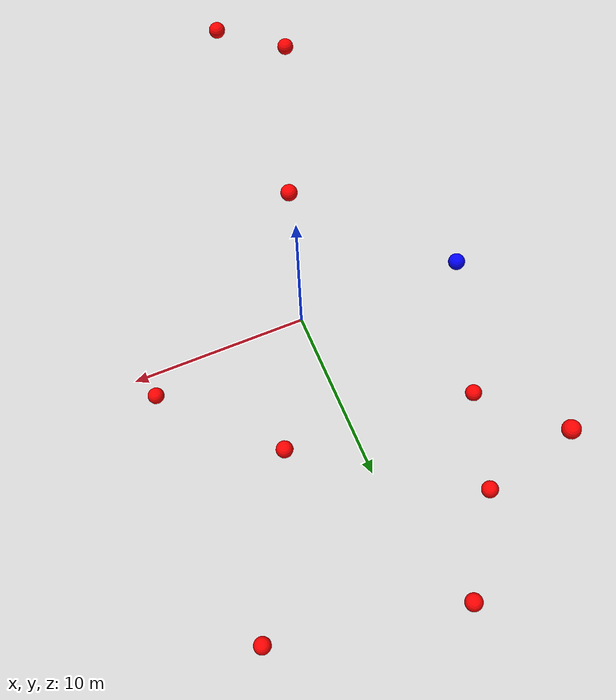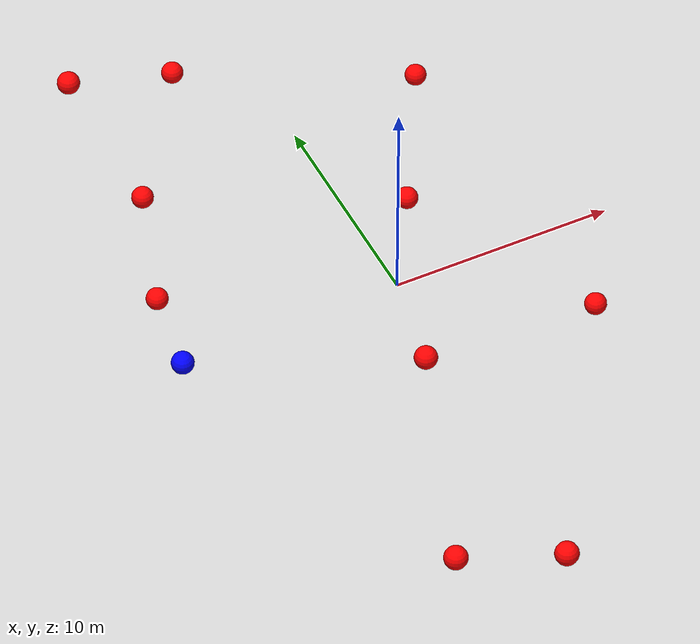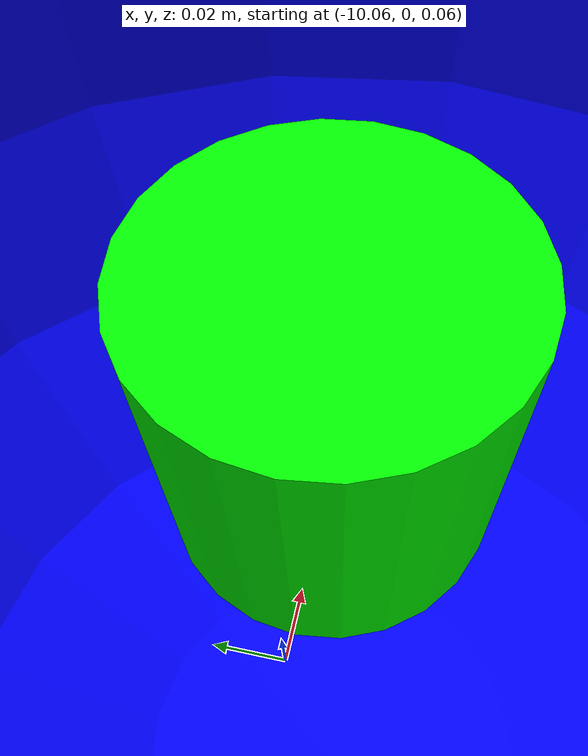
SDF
<?xml version="1.0" ?>
<sdf version="1.8">
    <world name="3d_world">
        <physics name="1ms" type="ode">
            <max_step_size>0.001</max_step_size>
            <real_time_factor>1.0</real_time_factor>
            <real_time_update_rate>1000.0</real_time_update_rate>
        </physics>
        <gravity>0 0 0</gravity>

        <plugin
            filename="gz-sim-physics-system"
            name="gz::sim::v8::systems::Physics">
        </plugin>
        <plugin
            filename="libignition-gazebo-user-commands-system.so"
            name="ignition::gazebo::systems::UserCommands">
        </plugin>
        <plugin
            filename="gz-sim-scene-broadcaster-system"
            name="gz::sim::systems::SceneBroadcaster">
        </plugin>
        <plugin
            filename="gz-sim-sensors-system"
            name="gz::sim::systems::Sensors">
            <render_engine>ogre2</render_engine>
        </plugin>

        <light type="directional" name="sun">
            <cast_shadows>true</cast_shadows>
            <pose>0 0 10 0 0 0</pose>
            <diffuse>0.8 0.8 0.8 1</diffuse>
            <specular>0.2 0.2 0.2 1</specular>
            <attenuation>
                <range>1000</range>
                <constant>0.9</constant>
                <linear>0.01</linear>
                <quadratic>0.001</quadratic>
            </attenuation>
            <direction>-0.5 0.1 -0.9</direction>
        </light>

        <!-- AGENTE -->
        <model name='agente' canonical_link='chassis'>
            <pose relative_to='world'>-10.0 0 0.0 0 0 0</pose>
            <link name='chassis'>
                <pose relative_to='__model__'>0.0 0 0.0 0 0 0</pose>
                <inertial>
                    <mass>1.14395</mass>
                    <inertia>
                        <ixx>0.095329</ixx>
                        <ixy>0</ixy>
                        <ixz>0</ixz>
                        <iyy>0.381317</iyy>
                        <iyz>0</iyz>
                        <izz>0.476646</izz>
                    </inertia>
                </inertial>
                <visual name='visual'>
                    <geometry>
                        <sphere>
                            <radius>0.5</radius>
                        </sphere>
                    </geometry>
                    <material>
                        <ambient>0.0 0.0 1.0 1</ambient>
                        <diffuse>0.0 0.0 1.0 1</diffuse>
                        <specular>0.0 0.0 1.0 1</specular>
                    </material>
                </visual>
                <collision name='collision'>
                    <geometry>
                        <sphere>
                            <radius>0.5</radius>
                        </sphere>
                    </geometry>
                </collision>
                <enable_gravity>false</enable_gravity>
            </link>

            <link name='lidar_link'>
                <pose relative_to='chassis'>0.0 0 0.1 0 0 0</pose>
                <inertial>
                    <mass>0.1</mass>
                    <inertia>
                        <ixx>0.000166667</ixx>
                        <iyy>0.000166667</iyy>
                        <izz>0.000166667</izz>
                    </inertia>
                </inertial>
                <collision name='collision'>
                    <geometry>
                        <cylinder>
                            <radius>0.05</radius>
                            <length>0.1</length>
                        </cylinder>
                    </geometry>
                </collision>
                <visual name='visual'>
                    <geometry>
                        <cylinder>
                            <radius>0.05</radius>
                            <length>0.1</length>
                        </cylinder>
                    </geometry>
                    <material>
                        <ambient>0.0 1.0 0.0 1</ambient>
                        <diffuse>0.0 1.0 0.0 1</diffuse>
                        <specular>0.0 1.0 0.0 1</specular>
                    </material>
                </visual>
                <sensor name="lidar" type="gpu_lidar">
                    <topic>scan</topic>
                    <update_rate>10</update_rate>
                    <lidar>
                        <scan>
                            <horizontal>
                                <samples>5000</samples>
                                <resolution>1</resolution>
                                <min_angle>-3.14159</min_angle>
                                <max_angle>3.14159</max_angle>
                            </horizontal>
                        </scan>
                        <range>
                            <min>0.1</min>
                            <max>10.0</max>
                            <resolution>0.01</resolution>
                        </range>
                    </lidar>
                    <visualize>true</visualize>
                    <always_on>true</always_on>
                    <update_rate>10</update_rate>
                    <pose_frame>lidar</pose_frame>
                </sensor>
                <enable_gravity>false</enable_gravity>
            </link>

            <joint name="lidar_joint" type="fixed">
                <parent>chassis</parent>
                <child>lidar_link</child>
            </joint>

            <plugin
                filename="ignition-gazebo-joint-state-publisher-system"
                name="ignition::gazebo::systems::JointStatePublisher">
            </plugin>
            <plugin
                filename="ignition-gazebo-odometry-publisher-system"
                name="ignition::gazebo::systems::OdometryPublisher">
                <dimensions>3</dimensions>
            </plugin>
            <plugin
                filename="ignition-gazebo-velocity-control-system"
                name="ignition::gazebo::systems::VelocityControl">
                <initial_linear>0.0 0 0</initial_linear>
                <initial_angular>0 0 0.0</initial_angular>
            </plugin>
            <plugin
                filename="libignition-gazebo-pose-publisher-system.so"
                name="ignition::gazebo::systems::PosePublisher">
                <topic>/agente/pose</topic>
                <frame_id>agente</frame_id>
                <update_rate>30</update_rate>
            </plugin>
        </model>

        <!-- OBSTACLE 1 -->
        <model name='obstacle_1' canonical_link='obstacle'>
            <static>false</static>
            <pose relative_to='world'>-2.36 17.88 -1.99 0 0 0</pose>
            <link name='obstacle'>
                <pose relative_to='__model__'>0.0 0 0.0 0 0 0</pose>
                <visual name='visual'>
                    <geometry>
                        <sphere>
                            <radius>0.50</radius>
                        </sphere>
                    </geometry>
                    <material>
                        <ambient>1.0 0.0 0.0 1</ambient>
                        <diffuse>1.0 0.0 0.0 1</diffuse>
                        <specular>1.0 0.0 0.0 1</specular>
                    </material>
                </visual>
                <collision name='collision'>
                    <geometry>
                        <sphere>
                            <radius>0.50</radius>
                        </sphere>
                    </geometry>
                </collision>
                <enable_gravity>false</enable_gravity>
            </link>

            <plugin
                filename="ignition-gazebo-velocity-control-system"
                name="ignition::gazebo::systems::VelocityControl">
                <initial_linear>0.42 -1.94 0.22</initial_linear>
                <initial_angular>0 0 0</initial_angular>
            </plugin>

            <plugin
                filename="ignition-gazebo-odometry-publisher-system"
                name="ignition::gazebo::systems::OdometryPublisher">
                <dimensions>3</dimensions>
            </plugin>
        </model>

        <!-- OBSTACLE 2 -->
        <model name='obstacle_2' canonical_link='obstacle'>
            <static>false</static>
            <pose relative_to='world'>-6.30 12.52 -3.31 0 0 0</pose>
            <link name='obstacle'>
                <pose relative_to='__model__'>0.0 0 0.0 0 0 0</pose>
                <visual name='visual'>
                    <geometry>
                        <sphere>
                            <radius>0.50</radius>
                        </sphere>
                    </geometry>
                    <material>
                        <ambient>1.0 0.0 0.0 1</ambient>
                        <diffuse>1.0 0.0 0.0 1</diffuse>
                        <specular>1.0 0.0 0.0 1</specular>
                    </material>
                </visual>
                <collision name='collision'>
                    <geometry>
                        <sphere>
                            <radius>0.50</radius>
                        </sphere>
                    </geometry>
                </collision>
                <enable_gravity>false</enable_gravity>
            </link>

            <plugin
                filename="ignition-gazebo-velocity-control-system"
                name="ignition::gazebo::systems::VelocityControl">
                <initial_linear>1.27 -1.49 0.40</initial_linear>
                <initial_angular>0 0 0</initial_angular>
            </plugin>

            <plugin
                filename="ignition-gazebo-odometry-publisher-system"
                name="ignition::gazebo::systems::OdometryPublisher">
                <dimensions>3</dimensions>
            </plugin>
        </model>

        <!-- OBSTACLE 3 -->
        <model name='obstacle_3' canonical_link='obstacle'>
            <static>false</static>
            <pose relative_to='world'>-5.86 -16.83 3.29 0 0 0</pose>
            <link name='obstacle'>
                <pose relative_to='__model__'>0.0 0 0.0 0 0 0</pose>
                <visual name='visual'>
                    <geometry>
                        <sphere>
                            <radius>0.50</radius>
                        </sphere>
                    </geometry>
                    <material>
                        <ambient>1.0 0.0 0.0 1</ambient>
                        <diffuse>1.0 0.0 0.0 1</diffuse>
                        <specular>1.0 0.0 0.0 1</specular>
                    </material>
                </visual>
                <collision name='collision'>
                    <geometry>
                        <sphere>
                            <radius>0.50</radius>
                        </sphere>
                    </geometry>
                </collision>
                <enable_gravity>false</enable_gravity>
            </link>

            <plugin
                filename="ignition-gazebo-velocity-control-system"
                name="ignition::gazebo::systems::VelocityControl">
                <initial_linear>1.11 1.63 -0.32</initial_linear>
                <initial_angular>0 0 0</initial_angular>
            </plugin>

            <plugin
                filename="ignition-gazebo-odometry-publisher-system"
                name="ignition::gazebo::systems::OdometryPublisher">
                <dimensions>3</dimensions>
            </plugin>
        </model>

        <!-- OBSTACLE 4 -->
        <model name='obstacle_4' canonical_link='obstacle'>
            <static>false</static>
            <pose relative_to='world'>-8.19 6.82 -3.50 0 0 0</pose>
            <link name='obstacle'>
                <pose relative_to='__model__'>0.0 0 0.0 0 0 0</pose>
                <visual name='visual'>
                    <geometry>
                        <sphere>
                            <radius>0.50</radius>
                        </sphere>
                    </geometry>
                    <material>
                        <ambient>1.0 0.0 0.0 1</ambient>
                        <diffuse>1.0 0.0 0.0 1</diffuse>
                        <specular>1.0 0.0 0.0 1</specular>
                    </material>
                </visual>
                <collision name='collision'>
                    <geometry>
                        <sphere>
                            <radius>0.50</radius>
                        </sphere>
                    </geometry>
                </collision>
                <enable_gravity>false</enable_gravity>
            </link>

            <plugin
                filename="ignition-gazebo-velocity-control-system"
                name="ignition::gazebo::systems::VelocityControl">
                <initial_linear>1.37 -1.29 0.66</initial_linear>
                <initial_angular>0 0 0</initial_angular>
            </plugin>

            <plugin
                filename="ignition-gazebo-odometry-publisher-system"
                name="ignition::gazebo::systems::OdometryPublisher">
                <dimensions>3</dimensions>
            </plugin>
        </model>

        <!-- OBSTACLE 5 -->
        <model name='obstacle_5' canonical_link='obstacle'>
            <static>false</static>
            <pose relative_to='world'>8.58 15.19 -4.46 0 0 0</pose>
            <link name='obstacle'>
                <pose relative_to='__model__'>0.0 0 0.0 0 0 0</pose>
                <visual name='visual'>
                    <geometry>
                        <sphere>
                            <radius>0.50</radius>
                        </sphere>
                    </geometry>
                    <material>
                        <ambient>1.0 0.0 0.0 1</ambient>
                        <diffuse>1.0 0.0 0.0 1</diffuse>
                        <specular>1.0 0.0 0.0 1</specular>
                    </material>
                </visual>
                <collision name='collision'>
                    <geometry>
                        <sphere>
                            <radius>0.50</radius>
                        </sphere>
                    </geometry>
                </collision>
                <enable_gravity>false</enable_gravity>
            </link>

            <plugin
                filename="ignition-gazebo-velocity-control-system"
                name="ignition::gazebo::systems::VelocityControl">
                <initial_linear>-0.24 -1.90 0.56</initial_linear>
                <initial_angular>0 0 0</initial_angular>
            </plugin>

            <plugin
                filename="ignition-gazebo-odometry-publisher-system"
                name="ignition::gazebo::systems::OdometryPublisher">
                <dimensions>3</dimensions>
            </plugin>
        </model>

        <!-- OBSTACLE 6 -->
        <model name='obstacle_6' canonical_link='obstacle'>
            <static>false</static>
            <pose relative_to='world'>3.62 6.23 -2.03 0 0 0</pose>
            <link name='obstacle'>
                <pose relative_to='__model__'>0.0 0 0.0 0 0 0</pose>
                <visual name='visual'>
                    <geometry>
                        <sphere>
                            <radius>0.50</radius>
                        </sphere>
                    </geometry>
                    <material>
                        <ambient>1.0 0.0 0.0 1</ambient>
                        <diffuse>1.0 0.0 0.0 1</diffuse>
                        <specular>1.0 0.0 0.0 1</specular>
                    </material>
                </visual>
                <collision name='collision'>
                    <geometry>
                        <sphere>
                            <radius>0.50</radius>
                        </sphere>
                    </geometry>
                </collision>
                <enable_gravity>false</enable_gravity>
            </link>

            <plugin
                filename="ignition-gazebo-velocity-control-system"
                name="ignition::gazebo::systems::VelocityControl">
                <initial_linear>-0.06 -1.17 0.38</initial_linear>
                <initial_angular>0 0 0</initial_angular>
            </plugin>

            <plugin
                filename="ignition-gazebo-odometry-publisher-system"
                name="ignition::gazebo::systems::OdometryPublisher">
                <dimensions>3</dimensions>
            </plugin>
        </model>

        <!-- OBSTACLE 7 -->
        <model name='obstacle_7' canonical_link='obstacle'>
            <static>false</static>
            <pose relative_to='world'>-2.17 -19.10 4.04 0 0 0</pose>
            <link name='obstacle'>
                <pose relative_to='__model__'>0.0 0 0.0 0 0 0</pose>
                <visual name='visual'>
                    <geometry>
                        <sphere>
                            <radius>0.50</radius>
                        </sphere>
                    </geometry>
                    <material>
                        <ambient>1.0 0.0 0.0 1</ambient>
                        <diffuse>1.0 0.0 0.0 1</diffuse>
                        <specular>1.0 0.0 0.0 1</specular>
                    </material>
                </visual>
                <collision name='collision'>
                    <geometry>
                        <sphere>
                            <radius>0.50</radius>
                        </sphere>
                    </geometry>
                </collision>
                <enable_gravity>false</enable_gravity>
            </link>

            <plugin
                filename="ignition-gazebo-velocity-control-system"
                name="ignition::gazebo::systems::VelocityControl">
                <initial_linear>0.70 1.83 -0.39</initial_linear>
                <initial_angular>0 0 0</initial_angular>
            </plugin>

            <plugin
                filename="ignition-gazebo-odometry-publisher-system"
                name="ignition::gazebo::systems::OdometryPublisher">
                <dimensions>3</dimensions>
            </plugin>
        </model>

        <!-- OBSTACLE 8 -->
        <model name='obstacle_8' canonical_link='obstacle'>
            <static>false</static>
            <pose relative_to='world'>-9.24 13.07 4.52 0 0 0</pose>
            <link name='obstacle'>
                <pose relative_to='__model__'>0.0 0 0.0 0 0 0</pose>
                <visual name='visual'>
                    <geometry>
                        <sphere>
                            <radius>0.50</radius>
                        </sphere>
                    </geometry>
                    <material>
                        <ambient>1.0 0.0 0.0 1</ambient>
                        <diffuse>1.0 0.0 0.0 1</diffuse>
                        <specular>1.0 0.0 0.0 1</specular>
                    </material>
                </visual>
                <collision name='collision'>
                    <geometry>
                        <sphere>
                            <radius>0.50</radius>
                        </sphere>
                    </geometry>
                </collision>
                <enable_gravity>false</enable_gravity>
            </link>

            <plugin
                filename="ignition-gazebo-velocity-control-system"
                name="ignition::gazebo::systems::VelocityControl">
                <initial_linear>1.41 -1.34 -0.46</initial_linear>
                <initial_angular>0 0 0</initial_angular>
            </plugin>

            <plugin
                filename="ignition-gazebo-odometry-publisher-system"
                name="ignition::gazebo::systems::OdometryPublisher">
                <dimensions>3</dimensions>
            </plugin>
        </model>

        <!-- OBSTACLE 9 -->
        <model name='obstacle_9' canonical_link='obstacle'>
            <static>false</static>
            <pose relative_to='world'>9.29 -0.90 -4.65 0 0 0</pose>
            <link name='obstacle'>
                <pose relative_to='__model__'>0.0 0 0.0 0 0 0</pose>
                <visual name='visual'>
                    <geometry>
                        <sphere>
                            <radius>0.50</radius>
                        </sphere>
                    </geometry>
                    <material>
                        <ambient>1.0 0.0 0.0 1</ambient>
                        <diffuse>1.0 0.0 0.0 1</diffuse>
                        <specular>1.0 0.0 0.0 1</specular>
                    </material>
                </visual>
                <collision name='collision'>
                    <geometry>
                        <sphere>
                            <radius>0.50</radius>
                        </sphere>
                    </geometry>
                </collision>
                <enable_gravity>false</enable_gravity>
            </link>

            <plugin
                filename="ignition-gazebo-velocity-control-system"
                name="ignition::gazebo::systems::VelocityControl">
                <initial_linear>-0.66 0.15 0.76</initial_linear>
                <initial_angular>0 0 0</initial_angular>
            </plugin>

            <plugin
                filename="ignition-gazebo-odometry-publisher-system"
                name="ignition::gazebo::systems::OdometryPublisher">
                <dimensions>3</dimensions>
            </plugin>
        </model>

        <!-- OBSTACLE 10 -->
        <model name='obstacle_10' canonical_link='obstacle'>
            <static>false</static>
            <pose relative_to='world'>-1.99 -6.58 2.94 0 0 0</pose>
            <link name='obstacle'>
                <pose relative_to='__model__'>0.0 0 0.0 0 0 0</pose>
                <visual name='visual'>
                    <geometry>
                        <sphere>
                            <radius>0.50</radius>
                        </sphere>
                    </geometry>
                    <material>
                        <ambient>1.0 0.0 0.0 1</ambient>
                        <diffuse>1.0 0.0 0.0 1</diffuse>
                        <specular>1.0 0.0 0.0 1</specular>
                    </material>
                </visual>
                <collision name='collision'>
                    <geometry>
                        <sphere>
                            <radius>0.50</radius>
                        </sphere>
                    </geometry>
                </collision>
                <enable_gravity>false</enable_gravity>
            </link>

            <plugin
                filename="ignition-gazebo-velocity-control-system"
                name="ignition::gazebo::systems::VelocityControl">
                <initial_linear>0.01 1.83 -0.81</initial_linear>
                <initial_angular>0 0 0</initial_angular>
            </plugin>

            <plugin
                filename="ignition-gazebo-odometry-publisher-system"
                name="ignition::gazebo::systems::OdometryPublisher">
                <dimensions>3</dimensions>
            </plugin>
        </model>

    </world>
</sdf>
